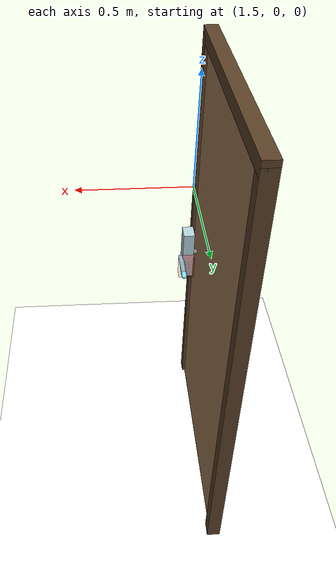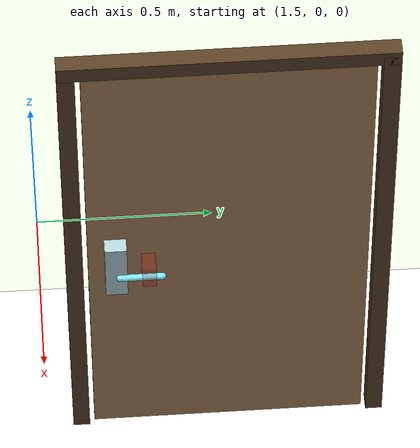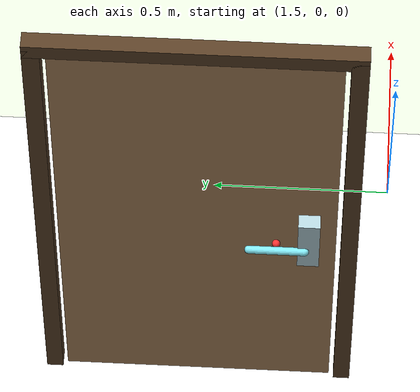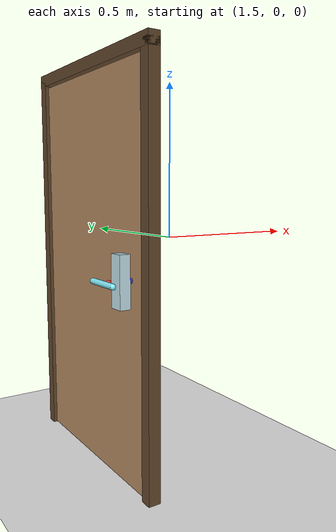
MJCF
<?xml version="1.0" encoding="utf-8"?>
<mujoco model="p7_xf9600 door scene">

  <statistic center="0.3 0 0.4" extent="1"/>

  <option timestep="0.001"
          iterations="5"
          ls_iterations="8"
          integrator="implicitfast"
          noslip_iterations="2">
    <flag eulerdamp="disable"/>
  </option>

  <custom>
    <numeric data="12" name="max_contact_points"/>
  </custom>

  <visual>
    <headlight diffuse=".8 .8 .8" ambient=".2 .2 .2" specular="1 1 1"/>
    <rgba force="1 0 0 1"/>
    <global azimuth="-40" elevation="-30"/>
    <map force="0.01"/>
    <quality shadowsize="8192"/>
    <scale contactwidth="0.075"
           contactheight="0.025"
           forcewidth="0.05"
           com="0.05"
           framewidth="0.01"
           framelength="0.2"/>
  </visual>

  <asset>
    <texture type="skybox"
             builtin="gradient"
             rgb1="1 1 1"
             rgb2="1 1 1"
             width="800"
             height="800"/>
    <texture type="2d"
             name="groundplane"
             builtin="checker"
             mark="edge"
             rgb1="1 1 1"
             rgb2="1 1 1"
             markrgb="0 0 0"
             width="300"
             height="300"/>
    <material name="groundplane"
              texture="groundplane"
              texuniform="true"
              texrepeat="5 5"
              reflectance="0"/>
  </asset>

  <worldbody>
    <light pos="0 0 1.5" dir="0 0 -1" directional="true"/>

    <body name="ground" pos="1 0 -1">
      <geom name="floor"
            size="0 0 0.05"
            type="plane"
            material="groundplane"
            contype="1"/>
    </body>
    <camera name="env1_cam" pos="0.814 -0.615 0.495" xyaxes="0.858 -0.513 0.000 0.251 0.420 0.872" fovy="50"/>
    <camera name="env0_cam" pos="1.147 2.181 -0.092" xyaxes="-0.996 -0.093 -0.000 0.004 -0.046 0.999" fovy="50"/>

    <body name="door_frame_physics"
          pos="1.490000000 0.100000000 -1.000000000"
          quat="0.707106781 0.000000000 0.000000000 0.707106781">
      <geom name="door_frame_physics_left_geom"
            type="box"
            pos="0.000000000 0.000000000 0.830000000"
            size="0.025000000 0.025000000 0.830000000"
            rgba="0.35 0.25 0.15 1"
            contype="1"
            conaffinity="1"/>
      <geom name="door_frame_physics_right_geom"
            type="box"
            pos="0.900000000 0.000000000 0.830000000"
            size="0.025000000 0.025000000 0.830000000"
            rgba="0.35 0.25 0.15 1"
            contype="1"
            conaffinity="1"/>
      <geom name="door_frame_physics_top_geom"
            type="box"
            pos="0.450000000 0.000000000 1.655000000"
            size="0.475000000 0.025000000 0.025000000"
            rgba="0.35 0.25 0.15 1"
            contype="1"
            conaffinity="1"/>

      <body name="door_body_phys" pos="0.840000000 0.000000000 0.000000000">
        <joint name="door_hinge" type="hinge" pos="0 0 0" axis="0 0 1" limited="true" range="-1.57 1.57 " damping="5.0" frictionloss="5.0" armature="0.05"/>

        <inertial pos="-0.420000000 0.000000000 0.815000000"
                  mass="6.0"
                  diaginertia="0.2 0.2 0.2"/>

        <geom name="door_panel_geom"
              type="box"
              pos="-0.390000000 0.000000000 0.815000000"
              size="0.410000000 0.015000000 0.805000000"
              rgba="0.65 0.50 0.35 1"
              density="350"
              contype="1"
              conaffinity="1"
              friction="0.8 0.1 0.1"/>

        <site name="door_push_site"
              pos="-0.729500000 0.022000000 0.825000000"
              size="0.012"
              rgba="0.2 0.2 1 1"/>

        <body name="handle_body_phys" pos="-0.719500000 0.000000000 0.825000000">
          <inertial pos="0 0 0"
                    mass="0.05"
                    diaginertia="0.00005 0.00005 0.00005"/>

          <geom name="handle_spindle_geom"
                type="cylinder"
                fromto="0 -0.042 0 0 0.042 0"
                size="0.010"
                rgba="0.55 0.55 0.55 1"
                contype="1"
                conaffinity="1"/>

          <geom name="handle_plate_front_geom"
                type="box"
                pos="0 0.054 0"
                size="0.032 0.022 0.102"
                rgba="0.70 0.82 0.85 0.95"
                contype="1"
                conaffinity="1"/>

          <geom name="handle_plate_back_geom"
                type="box"
                pos="0 -0.054 0"
                size="0.032 0.022 0.102"
                rgba="0.70 0.82 0.85 0.95"
                contype="1"
                conaffinity="1"/>

          <site name="handle_axis_site"
                pos="0 0 0"
                size="0.010"
                rgba="1 1 0 0.8"/>

          <body name="handle_lever_body" pos="0 0 -0.02">
            <inertial pos="0.08 0 0"
                      mass="0.10"
                      diaginertia="0.0001 0.0001 0.0001"/>

            <joint name="handle_hinge" type="hinge" pos="0 0 0" axis="0 1 0" limited="true" range="-0.20 0.80" damping="0.4" frictionloss="0.02" armature="0.0005" springref="0" stiffness="0.5"/>

            <geom name="handle_lever_front_geom"
                  type="capsule"
                  fromto="0.010 0.080 0 0.175 0.080 0"
                  size="0.012"
                  rgba="0.50 0.90 0.95 1"
                  contype="1"
                  conaffinity="1"/>

            <geom name="handle_lever_back_geom"
                  type="capsule"
                  fromto="0.010 -0.080 0 0.135 -0.080 0"
                  size="0.010"
                  rgba="0.50 0.90 0.95 1"
                  contype="1"
                  conaffinity="1"/>

            <site name="handle_front_tip_site"
                  pos="0.175 0.080 0.000"
                  size="0.010"
                  rgba="1 0.4 0.2 1"/>

            <site name="handle_grasp_site"
                  pos="0.095000000 0.055000000 0.000000000"
                  size="0.012"
                  rgba="1 0.2 0.2 1"/>

            <site name="handle_press_site"
                  pos="0.095000000 0.080000000 0.000000000"
                  size="0.012"
                  rgba="0.2 1 0.2 1"/>

            <body name="handle_gs_frame"
                  pos="0.270651190 1.595000000 0.058962200"
                  quat="0.023543636 -0.014802135 0.716127885 -0.697414831"/>
          </body>
        </body>

        <body name="door_gs_frame"
              pos="-0.448848810 1.595000000 0.863962200"
              quat="0.023543636 -0.014802135 0.716127885 -0.697414831">
          <body name="door_body" pos="0 0 0"/>
        </body>
      </body>
    </body>

    <body name="mocap_target"
          mocap="true"
          pos="1.560000000 0.315500000 -0.175000000"
          quat="1 0 0 0">
      <geom name="mocap_target_box"
            type="box"
            size="0.03 0.02 0.04"
            rgba="1 0 0 0.20"
            contype="0"
            conaffinity="0"/>
    </body>

  </worldbody>

</mujoco>
